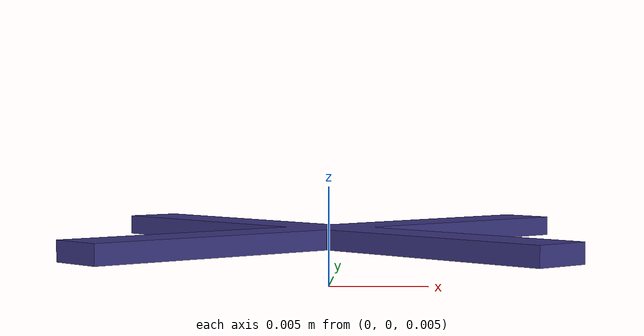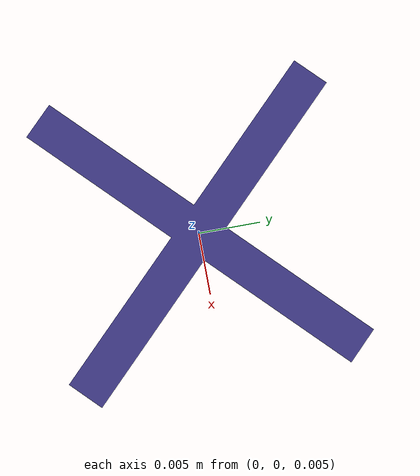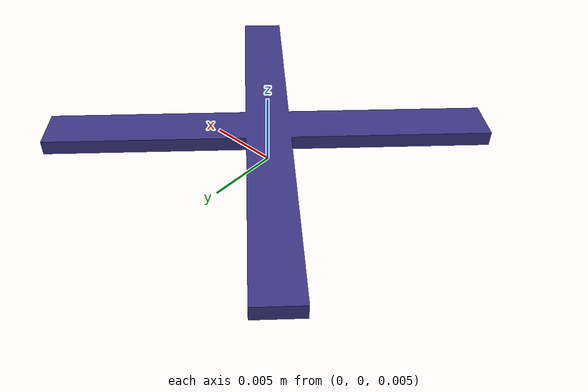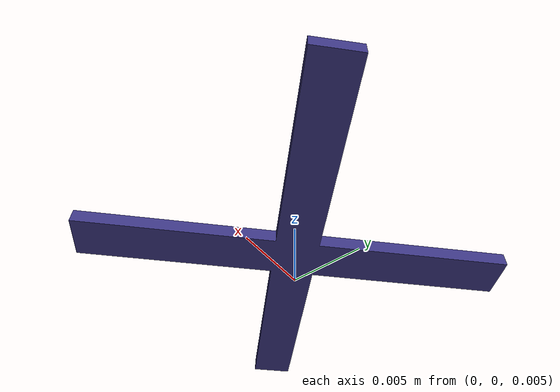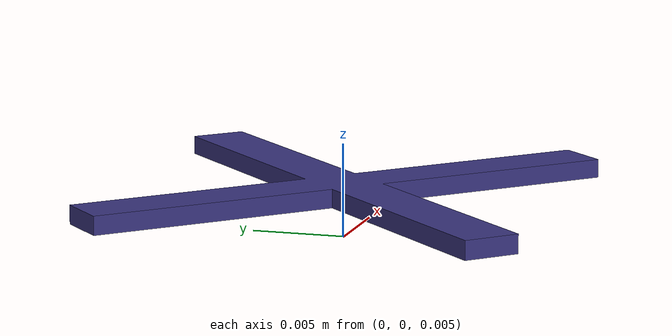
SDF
<?xml version="1.0" ?>
<sdf version='1.4'>
  <model name="cross">
      <static>1</static>
      <link name='link'>
        <visual name='visual'>
            <geometry>
                <mesh>
                    <uri>model://cross/meshes/cross.dae</uri>
                    <scale>1 1 1</scale>
                </mesh>
            </geometry>
        </visual>
      </link>
  </model>
</sdf>
